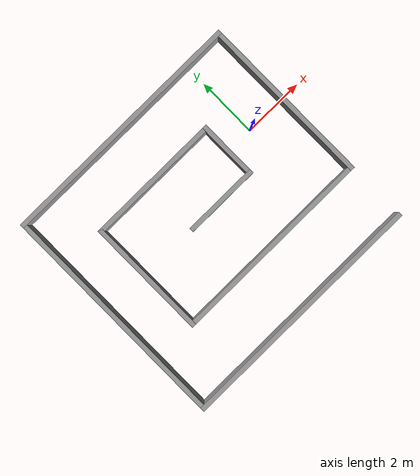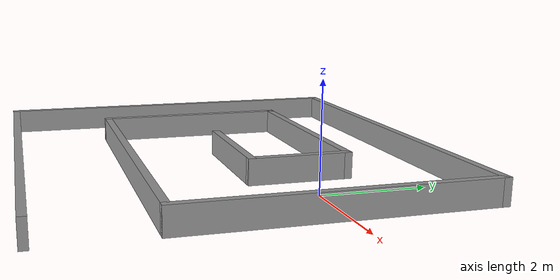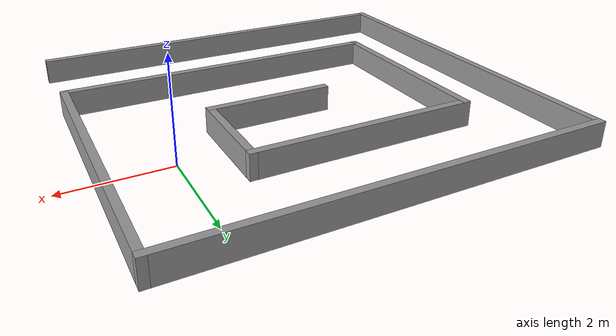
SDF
<?xml version='1.0'?>
<sdf version='1.6'>
  <model name='MapSpiral'>
    <pose frame=''>-2.759 -1.114 0 0 -0 0</pose>
    <link name='Wall_10'>
      <collision name='Wall_10_Collision'>
        <geometry>
          <box>
            <size>8.25 0.15 0.5</size>
          </box>
        </geometry>
        <pose frame=''>0 0 0.25 0 -0 0</pose>
      </collision>
      <visual name='Wall_10_Visual'>
        <pose frame=''>0 0 0.25 0 -0 0</pose>
        <geometry>
          <box>
            <size>8.25 0.15 0.5</size>
          </box>
        </geometry>
        <material>
          <script>
            <uri>file://media/materials/scripts/gazebo.material</uri>
            <name>Gazebo/Grey</name>
          </script>
          <ambient>1 1 1 1</ambient>
        </material>
      </visual>
      <pose frame=''>0 3.8 0 0 -0 3.14159</pose>
    </link>
    <link name='Wall_11'>
      <collision name='Wall_11_Collision'>
        <geometry>
          <box>
            <size>7.75 0.15 0.5</size>
          </box>
        </geometry>
        <pose frame=''>0 0 0.25 0 -0 0</pose>
      </collision>
      <visual name='Wall_11_Visual'>
        <pose frame=''>0 0 0.25 0 -0 0</pose>
        <geometry>
          <box>
            <size>7.75 0.15 0.5</size>
          </box>
        </geometry>
        <material>
          <script>
            <uri>file://media/materials/scripts/gazebo.material</uri>
            <name>Gazebo/Grey</name>
          </script>
          <ambient>1 1 1 1</ambient>
        </material>
      </visual>
      <pose frame=''>-4.05 0 0 0 0 -1.5708</pose>
    </link>
    <link name='Wall_12'>
      <collision name='Wall_12_Collision'>
        <geometry>
          <box>
            <size>8.25 0.15 0.5</size>
          </box>
        </geometry>
        <pose frame=''>0 0 0.25 0 -0 0</pose>
      </collision>
      <visual name='Wall_12_Visual'>
        <pose frame=''>0 0 0.25 0 -0 0</pose>
        <geometry>
          <box>
            <size>8.25 0.15 0.5</size>
          </box>
        </geometry>
        <material>
          <script>
            <uri>file://media/materials/scripts/gazebo.material</uri>
            <name>Gazebo/Grey</name>
          </script>
          <ambient>1 1 1 1</ambient>
        </material>
      </visual>
      <pose frame=''>0 -3.8 0 0 -0 0</pose>
    </link>
    <link name='Wall_4'>
      <collision name='Wall_4_Collision'>
        <geometry>
          <box>
            <size>2.5 0.15 0.5</size>
          </box>
        </geometry>
        <pose frame=''>0 0 0.25 0 -0 0</pose>
      </collision>
      <visual name='Wall_4_Visual'>
        <pose frame=''>0 0 0.25 0 -0 0</pose>
        <geometry>
          <box>
            <size>2.5 0.15 0.5</size>
          </box>
        </geometry>
        <material>
          <script>
            <uri>file://media/materials/scripts/gazebo.material</uri>
            <name>Gazebo/Grey</name>
          </script>
          <ambient>1 1 1 1</ambient>
        </material>
      </visual>
      <pose frame=''>0.625 0.2 0 0 -0 0</pose>
    </link>
    <link name='Wall_5'>
      <collision name='Wall_5_Collision'>
        <geometry>
          <box>
            <size>2 0.15 0.5</size>
          </box>
        </geometry>
        <pose frame=''>0 0 0.25 0 -0 0</pose>
      </collision>
      <visual name='Wall_5_Visual'>
        <pose frame=''>0 0 0.25 0 -0 0</pose>
        <geometry>
          <box>
            <size>2 0.15 0.5</size>
          </box>
        </geometry>
        <material>
          <script>
            <uri>file://media/materials/scripts/gazebo.material</uri>
            <name>Gazebo/Grey</name>
          </script>
          <ambient>1 1 1 1</ambient>
        </material>
      </visual>
      <pose frame=''>1.8 1.125 0 0 -0 1.5708</pose>
    </link>
    <link name='Wall_6'>
      <collision name='Wall_6_Collision'>
        <geometry>
          <box>
            <size>4.5 0.15 0.5</size>
          </box>
        </geometry>
        <pose frame=''>0 0 0.25 0 -0 0</pose>
      </collision>
      <visual name='Wall_6_Visual'>
        <pose frame=''>0 0 0.25 0 -0 0</pose>
        <geometry>
          <box>
            <size>4.5 0.15 0.5</size>
          </box>
        </geometry>
        <material>
          <script>
            <uri>file://media/materials/scripts/gazebo.material</uri>
            <name>Gazebo/Grey</name>
          </script>
          <ambient>1 1 1 1</ambient>
        </material>
      </visual>
      <pose frame=''>-0.375 2.05 0 0 -0 3.14159</pose>
    </link>
    <link name='Wall_7'>
      <collision name='Wall_7_Collision'>
        <geometry>
          <box>
            <size>4 0.15 0.5</size>
          </box>
        </geometry>
        <pose frame=''>0 0 0.25 0 -0 0</pose>
      </collision>
      <visual name='Wall_7_Visual'>
        <pose frame=''>0 0 0.25 0 -0 0</pose>
        <geometry>
          <box>
            <size>4 0.15 0.5</size>
          </box>
        </geometry>
        <material>
          <script>
            <uri>file://media/materials/scripts/gazebo.material</uri>
            <name>Gazebo/Grey</name>
          </script>
          <ambient>1 1 1 1</ambient>
        </material>
      </visual>
      <pose frame=''>-2.55 0.125 0 0 0 -1.5708</pose>
    </link>
    <link name='Wall_8'>
      <collision name='Wall_8_Collision'>
        <geometry>
          <box>
            <size>6.75 0.15 0.5</size>
          </box>
        </geometry>
        <pose frame=''>0 0 0.25 0 -0 0</pose>
      </collision>
      <visual name='Wall_8_Visual'>
        <pose frame=''>0 0 0.25 0 -0 0</pose>
        <geometry>
          <box>
            <size>6.75 0.15 0.5</size>
          </box>
        </geometry>
        <material>
          <script>
            <uri>file://media/materials/scripts/gazebo.material</uri>
            <name>Gazebo/Grey</name>
          </script>
          <ambient>1 1 1 1</ambient>
        </material>
      </visual>
      <pose frame=''>0.75 -1.8 0 0 -0 0</pose>
    </link>
    <link name='Wall_9'>
      <collision name='Wall_9_Collision'>
        <geometry>
          <box>
            <size>5.75 0.15 0.5</size>
          </box>
        </geometry>
        <pose frame=''>0 0 0.25 0 -0 0</pose>
      </collision>
      <visual name='Wall_9_Visual'>
        <pose frame=''>0 0 0.25 0 -0 0</pose>
        <geometry>
          <box>
            <size>5.75 0.15 0.5</size>
          </box>
        </geometry>
        <material>
          <script>
            <uri>file://media/materials/scripts/gazebo.material</uri>
            <name>Gazebo/Grey</name>
          </script>
          <ambient>1 1 1 1</ambient>
        </material>
      </visual>
      <pose frame=''>4.05 1 0 0 -0 1.5708</pose>
    </link>
    <static>1</static>
  </model>
</sdf>
